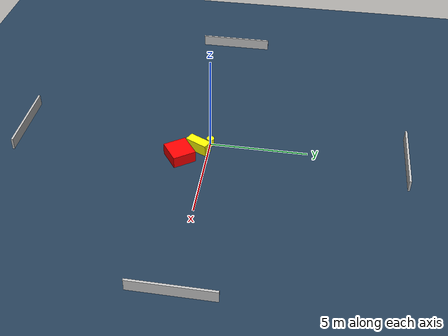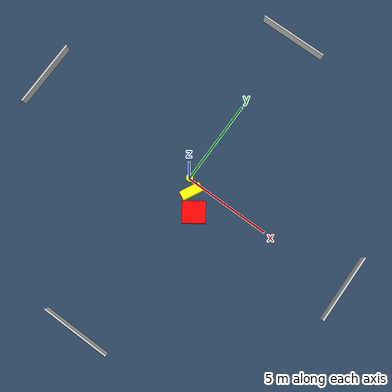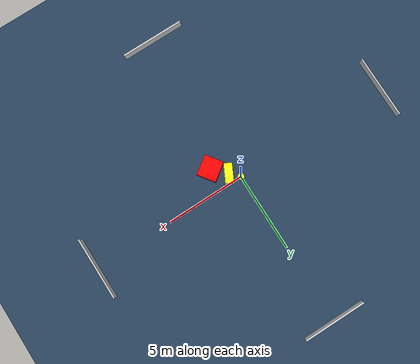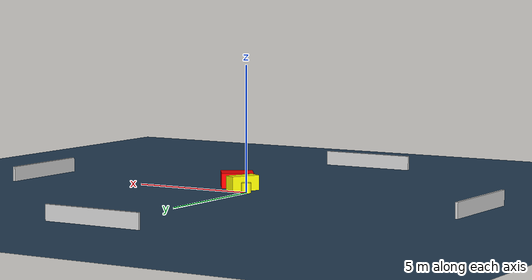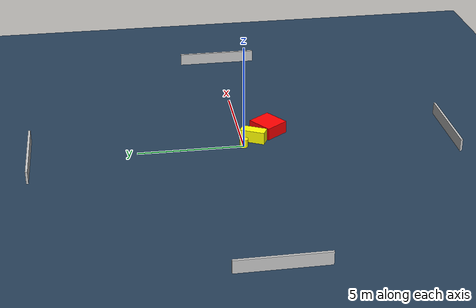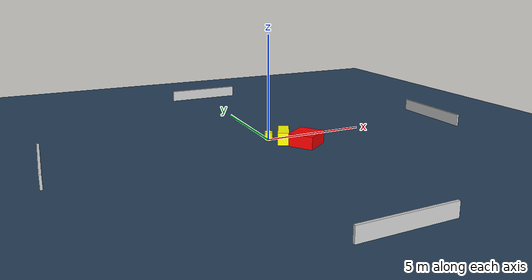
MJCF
<?xml version="1.0" ?>
<mujoco model="generated_environment">
  <option timestep="0.01" integrator="RK4" cone="elliptic"/>
  <default>
    <geom density="1"/>
  </default>
  <asset>
    <texture builtin="gradient" height="3072" name="skybox" rgb1="0.3 0.5 0.7" rgb2="0 0 0" type="skybox" width="512"/>
    <texture builtin="checker" height="300" name="groundplane" rgb1="0.2 0.3 0.4" rgb2="0.1 0.2 0.3" type="2d" width="300"/>
    <material name="groundplane" reflectance="0.2" texrepeat="5 5" texture="groundplane"/>
  </asset>
  <worldbody>
    <light dir="0 0 -1" directional="true" pos="0 0 1.5"/>
    <geom condim="3" friction="0.5 0.005 0.001" material="groundplane" name="floor" pos="0 0 0" size="0 0 0.05" type="plane"/>
    <body name="walls">
      <geom name="wall_1" condim="4" pos="-10.0 0.0 0.3" rgba="0.800000011920929 0.800000011920929 0.800000011920929 1.0" size="0.05 2.0 0.3" type="box"/>
      <geom name="wall_2" condim="4" pos="10.0 0.0 0.3" rgba="0.800000011920929 0.800000011920929 0.800000011920929 1.0" size="0.05 2.0 0.3" type="box"/>
      <geom name="wall_3" condim="4" pos="0.0 -10.0 0.3" rgba="0.800000011920929 0.800000011920929 0.800000011920929 1.0" size="2.0 0.05 0.3" type="box"/>
      <geom name="wall_4" condim="4" pos="0.0 10.0 0.3" rgba="0.800000011920929 0.800000011920929 0.800000011920929 1.0" size="2.0 0.05 0.3" type="box"/>
    </body>
    <body name="robot">
      <joint name="joint_x" type="slide" pos="0 0 0" axis="1 0 0"/>
      <joint name="joint_y" type="slide" pos="0 0 0" axis="0 1 0"/>
      <geom name="robot" type="cylinder" pos="0.0 0.0 0.2" size="0.2 0.2 0.0" mass="5.0" friction="1.0 0.005 0.0001" condim="4" rgba="1.0 1.0 0.0 1.0"/>
    </body>
    <body name="obstacle_1_movable">
      <geom name="obstacle_1_movable" condim="4" pos="0.51408798508132 -0.5473591171806625 0.3" euler="0 0 63.19173590411671" friction="0.0 0.005 0.001" rgba="1.0 1.0 0.0 1.0" size="0.6055156690506553 0.25741661890428336 0.3" type="box" mass="0.1"/>
      <joint type="free"/>
    </body>
    <body name="obstacle_2_static">
      <geom name="obstacle_2_static" condim="4" pos="1.287278659121938 -1.3806990617967672 0.3" euler="0 0 305.30408225817575" friction="0.0 0.005 0.001" rgba="1.0 0.0 0.0 1.0" size="0.6001725048094204 0.6433975169964672 0.3" type="box"/>
    </body>
  </worldbody>
  <actuator>
    <motor name="actuator_x" joint="joint_x" gear="1" ctrlrange="-1 1"/>
    <motor name="actuator_y" joint="joint_y" gear="1" ctrlrange="-1 1"/>
  </actuator>
</mujoco>
